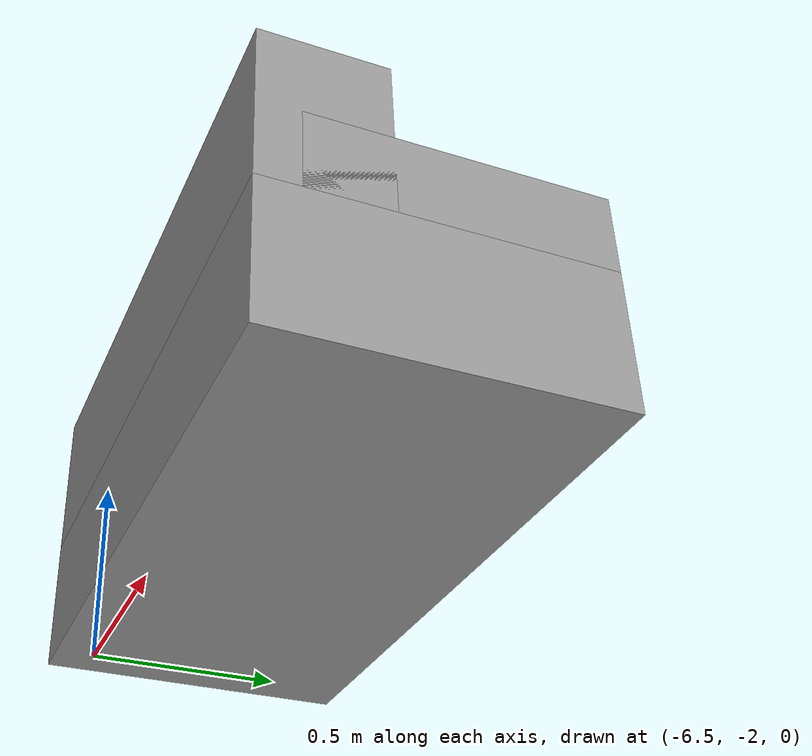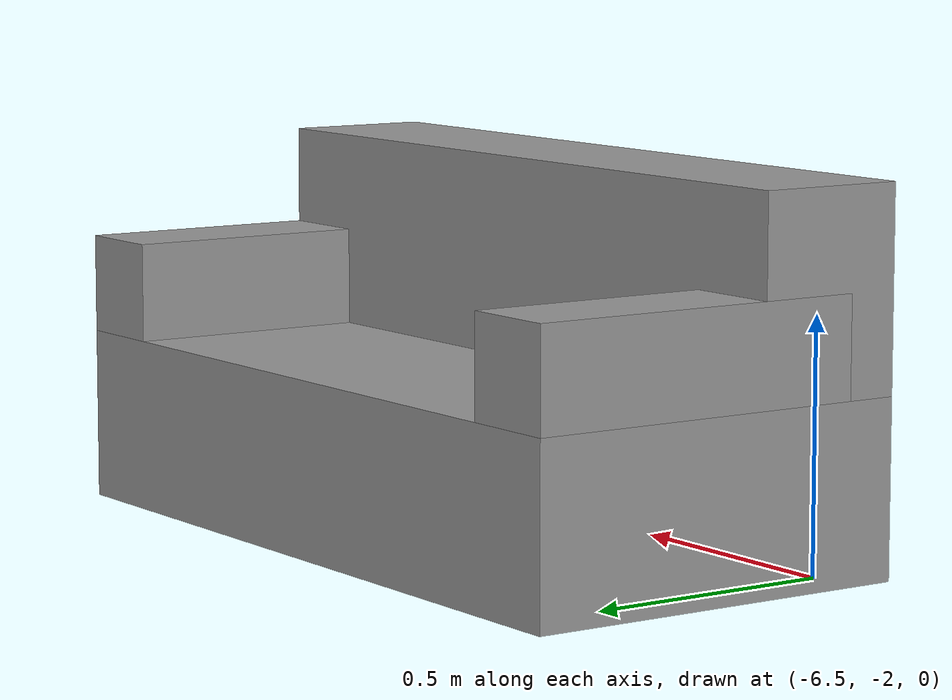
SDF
<?xml version="1.0" ?>
<sdf version='1.4'>
  <model name='sofa_x2_salon'>
    <link name='sofa_link'>
      <pose>0 0 0 0 -0 0</pose>
      <inertial>
        <pose>0 0.0115385 0.257692 0 -0 0</pose>
        <mass>13</mass>
        <inertia>
          <ixx>0.7625</ixx>
          <ixy>0</ixy>
          <ixz>0</ixz>
          <iyy>1.67673</iyy>
          <iyz>-0.0463462</iyz>
          <izz>1.44577</izz>
        </inertia>
      </inertial>
      <collision name='sofa_link_collision'>
        <pose>0 0 0.175 0 -0 0</pose>
        <geometry>
          <box>
            <size>1.6 0.8 0.35</size>
          </box>
        </geometry>
        <surface>
          <contact>
            <ode/>
          </contact>
          <friction>
            <ode>
              <mu>100</mu>
              <mu2>100</mu2>
            </ode>
          </friction>
          <bounce/>
        </surface>
        <max_contacts>10</max_contacts>
      </collision>
      <collision name='sofa_link_collision_brazo_1_link'>
        <pose>0.7 -0.05 0.45 0 -0 0</pose>
        <geometry>
          <box>
            <size>0.2 0.7 0.2</size>
          </box>
        </geometry>
        <surface>
          <contact>
            <ode/>
          </contact>
          <friction>
            <ode>
              <mu>100</mu>
              <mu2>100</mu2>
            </ode>
          </friction>
          <bounce/>
        </surface>
        <surface>
          <contact>
            <ode/>
          </contact>
          <friction>
            <ode>
              <mu>100</mu>
              <mu2>100</mu2>
            </ode>
          </friction>
        </surface>
        <max_contacts>10</max_contacts>
      </collision>
      <collision name='sofa_link_collision_brazo_2_link'>
        <pose>-0.7 -0.05 0.45 0 -0 0</pose>
        <geometry>
          <box>
            <size>0.2 0.7 0.2</size>
          </box>
        </geometry>
        <surface>
          <contact>
            <ode/>
          </contact>
          <friction>
            <ode>
              <mu>100</mu>
              <mu2>100</mu2>
            </ode>
          </friction>
          <bounce/>
        </surface>
        <surface>
          <contact>
            <ode/>
          </contact>
          <friction>
            <ode>
              <mu>100</mu>
              <mu2>100</mu2>
            </ode>
          </friction>
        </surface>
        <max_contacts>10</max_contacts>
      </collision>
      <collision name='sofa_link_collision_respaldo_link'>
        <pose>0 0.25 0.55 0 -0 0</pose>
        <geometry>
          <box>
            <size>1.6 0.3 0.4</size>
          </box>
        </geometry>
        <surface>
          <contact>
            <ode/>
          </contact>
          <friction>
            <ode>
              <mu>100</mu>
              <mu2>100</mu2>
            </ode>
          </friction>
          <bounce/>
        </surface>
        <surface>
          <contact>
            <ode/>
          </contact>
          <friction>
            <ode>
              <mu>100</mu>
              <mu2>100</mu2>
            </ode>
          </friction>
        </surface>
        <max_contacts>10</max_contacts>
      </collision>
      <visual name='sofa_link_visual'>
        <pose>0 0 0.175 0 -0 0</pose>
        <geometry>
          <box>
            <size>1.6 0.8 0.35</size>
          </box>
        </geometry>
        <material>
          <script>
            <name>Gazebo/Grey</name>
            <uri>__default__</uri>
          </script>
        </material>
      </visual>
      <visual name='sofa_link_visual_brazo_1_link'>
        <pose>0.7 -0.05 0.45 0 -0 0</pose>
        <geometry>
          <box>
            <size>0.2 0.7 0.2</size>
          </box>
        </geometry>
        <material>
          <script>
            <name>Gazebo/Grey</name>
            <uri>__default__</uri>
          </script>
        </material>
      </visual>
      <visual name='sofa_link_visual_brazo_2_link'>
        <pose>-0.7 -0.05 0.45 0 -0 0</pose>
        <geometry>
          <box>
            <size>0.2 0.7 0.2</size>
          </box>
        </geometry>
        <material>
          <script>
            <name>Gazebo/Grey</name>
            <uri>__default__</uri>
          </script>
        </material>
      </visual>
      <visual name='sofa_link_visual_respaldo_link'>
        <pose>0 0.25 0.55 0 -0 0</pose>
        <geometry>
          <box>
            <size>1.6 0.3 0.4</size>
          </box>
        </geometry>
        <material>
          <script>
            <name>Gazebo/Grey</name>
            <uri>__default__</uri>
          </script>
        </material>
      </visual>
      <velocity_decay>
        <linear>0</linear>
        <angular>0</angular>
      </velocity_decay>
      <velocity_decay>
        <linear>0</linear>
        <angular>0</angular>
      </velocity_decay>
      <velocity_decay>
        <linear>0</linear>
        <angular>0</angular>
      </velocity_decay>
      <gravity>1</gravity>
      <velocity_decay>
        <linear>0</linear>
        <angular>0</angular>
      </velocity_decay>
      <self_collide>1</self_collide>
      <kinematic>0</kinematic>
    </link>
    <pose>-5.8 -1.7 0 0 -0 3.14</pose>
    <static>0</static>
  </model>
</sdf>
